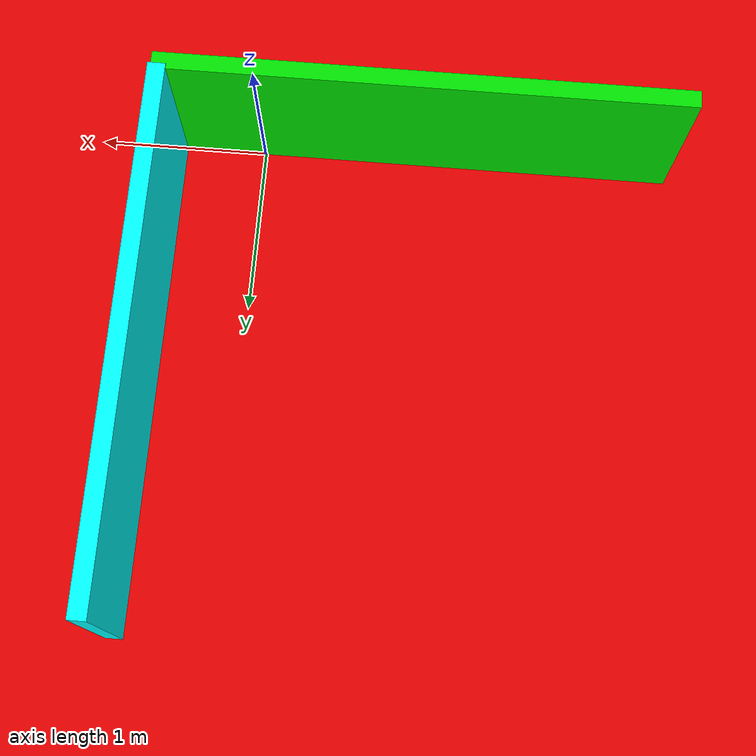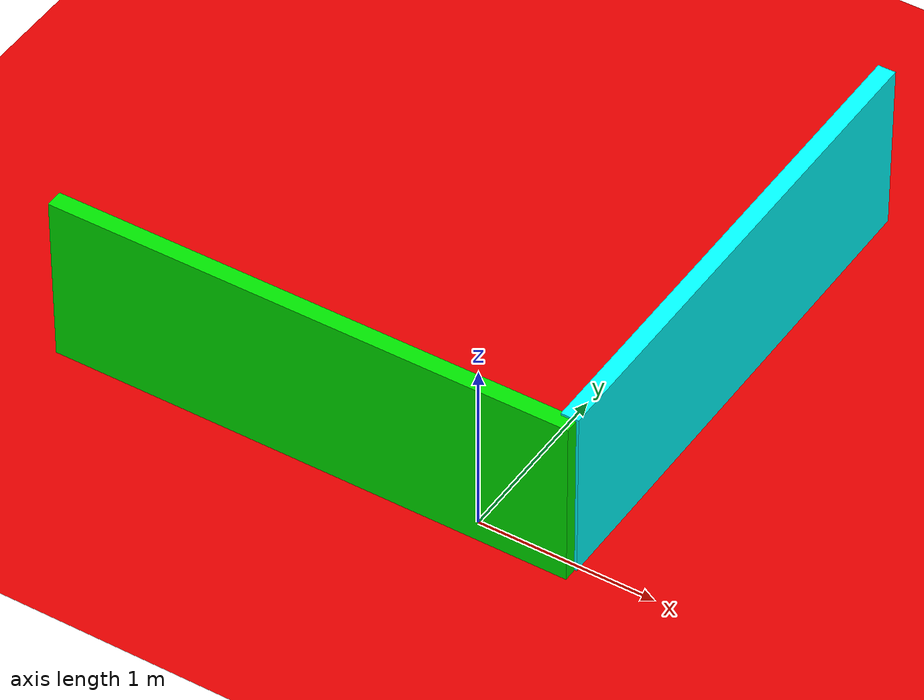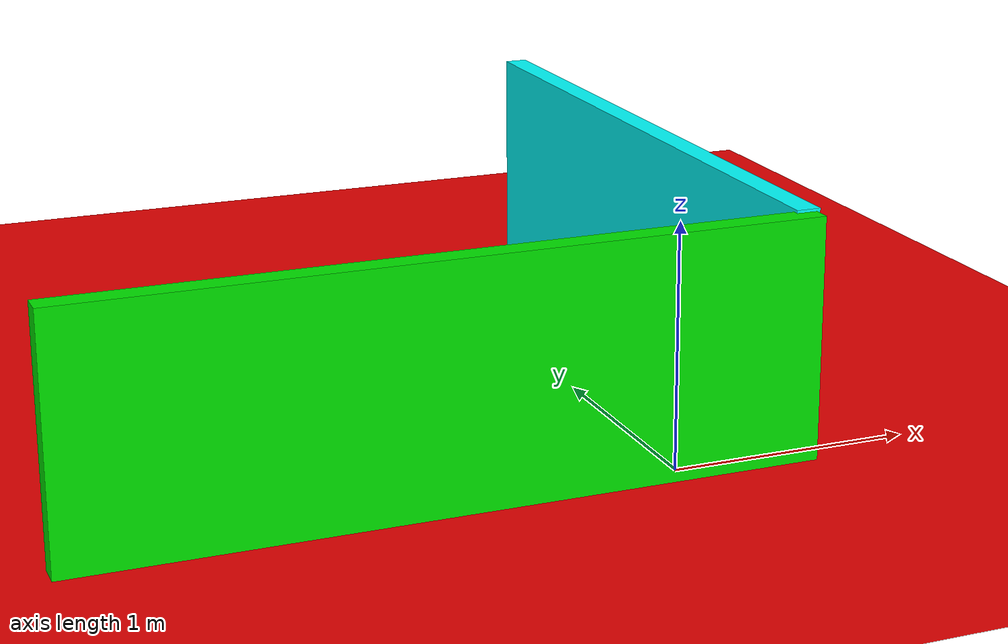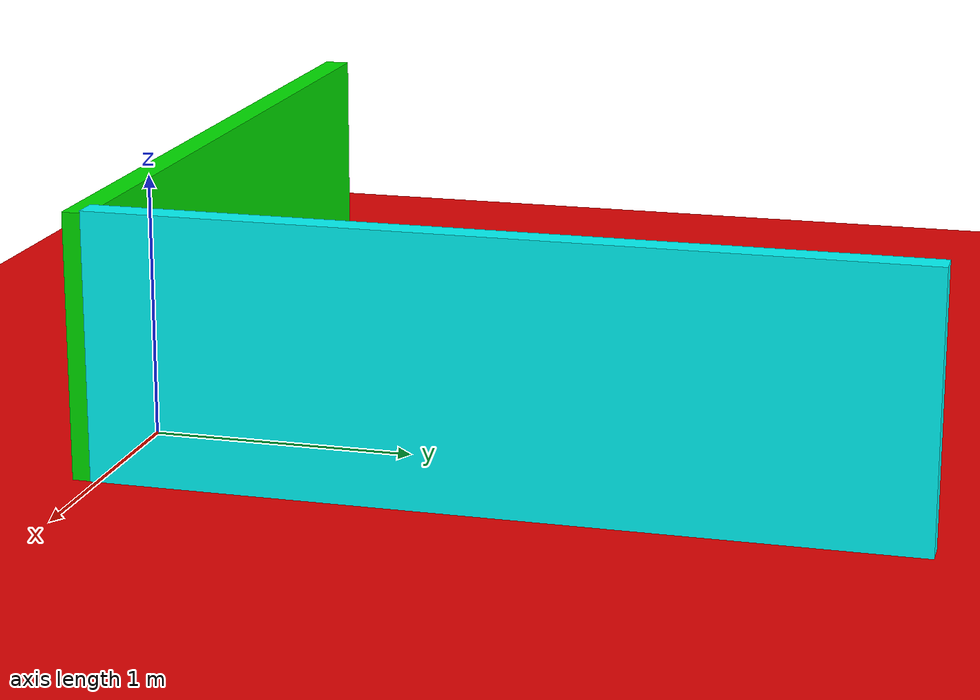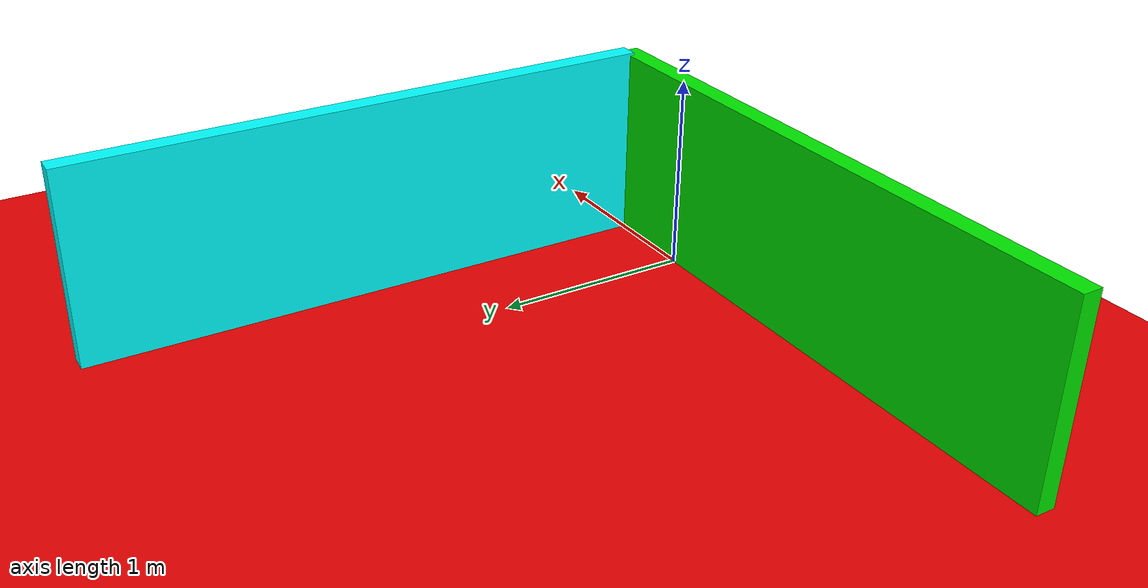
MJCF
<mujoco>
  <worldbody>
    <light diffuse=".5 .5 .5" pos="0 0 3" dir="0 0 -1" />
    <geom type="plane" size="5 5 1.110223E-16" rgba=".9 0 0 1" />
    <body pos="0.53 1.471 0.5">
      <geom type="box" size="0.05 1.5 0.5" euler="0 0 0" rgba="0 255 13 1" />
    </body>
    <body pos="-0.934 -0.053 0.488">
      <geom type="box" size="1.5 0.05 0.5" euler="0 0 0" rgba="0 .9 0 1" />
    </body>
  </worldbody>
</mujoco>
